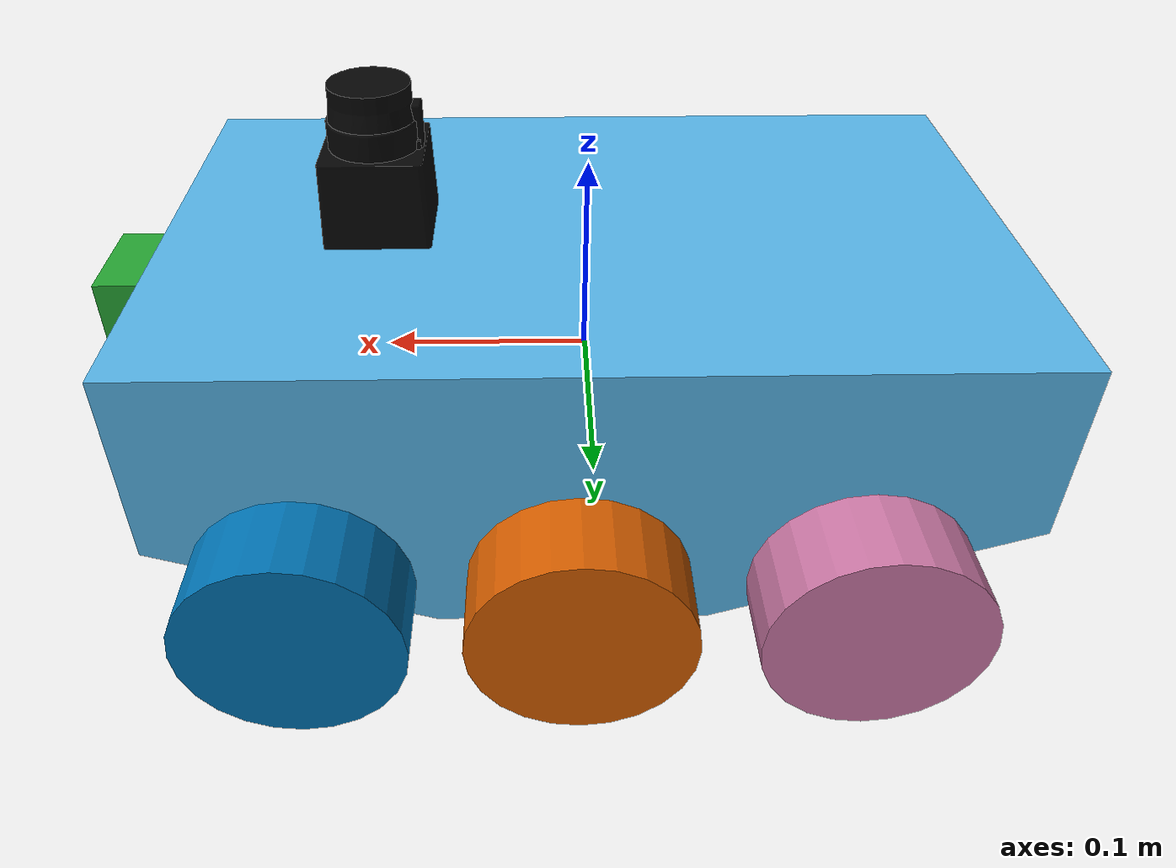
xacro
<?xml version="1.0"?>
<!-- created with Phobos 0.8 -->
  <robot name="tank_bot" xmlns:xacro="http://www.ros.org/wiki/xacro">

    <xacro:include filename="$(find tank_bot)/urdf/tank_bot.gazebo" />
    <link name="robot_footprint"></link>

    <joint name="robot_footprint_joint" type="fixed">
      <origin xyz="0 0 0" rpy="0 0 0" />
      <parent link="robot_footprint"/>
      <child link="body" />
    </joint>

    <link name="body">
      <inertial>
        <origin xyz="0 0 0" rpy="0 0 0"/>
        <mass value="25.0"/>
        <inertia ixx="0.1" ixy="0" ixz="0" iyy="0.1" iyz="0" izz="0.1"/>
      </inertial>
      <visual name="visual_body">
        <origin xyz="0 0 0" rpy="0 0 0"/>
        <geometry>
          <mesh filename="package://tank_bot/meshes/dae/body.dae" scale="0.2 0.125 0.06938"/>
        </geometry>
      </visual>
      <collision name="collision_body">
        <origin xyz="0 0 0" rpy="0 0 0"/>
        <geometry>
          <box size="0.4 0.25 0.13875"/>
        </geometry>
      </collision>
    </link>

    <link name="camera">
      <inertial>
        <origin xyz="0 0 0" rpy="0 0 0"/>
        <mass value="0.1"/>
        <inertia ixx="0" ixy="0" ixz="0" iyy="0" iyz="0" izz="0"/>
      </inertial>
      <visual name="tank_bot::visual_camera">
        <origin xyz="0 0 0" rpy="1.5707 0 0"/>
        <geometry>
          <box size="0.05 0.05 0.05"/>
        </geometry>
      </visual>
      <collision name="collision_camera">
        <origin xyz="0 0 0" rpy="0 0 0"/>
        <geometry>
          <box size="0.05 0.05 0.05"/>
        </geometry>
      </collision>
    </link>

    <link name="hokuyo">
      <inertial>
        <origin xyz="0 0 0" rpy="0 0 0"/>
        <mass value="0.1"/>
        <inertia ixx="0" ixy="0" ixz="0" iyy="0" iyz="0" izz="0"/>
      </inertial>
      <visual name="visual_hokuyo">
        <origin xyz="0 0 0" rpy="1.5707 0 0"/>
        <geometry>
          <mesh filename="package://tank_bot/meshes/dae/hokuyo.dae" scale="1.0 1.0 1.0"/>
        </geometry>
        <material name="black-material"/>
      </visual>
      <collision name="collision_hokuyo">
        <origin xyz="0 0 0" rpy="0 0 0"/>
        <geometry>
          <box size="0.05 0.0701 0.05"/>
        </geometry>
      </collision>
    </link>

    <link name="left_wheel1">
      <inertial>
        <origin xyz="0 0 0" rpy="0 0 0"/>
        <mass value="3.0"/>
        <inertia ixx="0.11111" ixy="0" ixz="0" iyy="0.11111" iyz="0" izz="0.11111"/>
      </inertial>
      <visual name="visual_left_wheel1">
        <origin xyz="0 0 0" rpy="0 3.14159 0"/>
        <geometry>
          <cylinder radius="0.05" length="0.04"/>
        </geometry>
      </visual>
      <collision name="collision_left_wheel1">
        <origin xyz="0 0 0" rpy="0 3.14159 0"/>
        <geometry>
          <cylinder radius="0.05" length="0.04"/>
        </geometry>
      </collision>
    </link>

    <link name="left_wheel2">
      <inertial>
        <origin xyz="0 0 0" rpy="0 0 0"/>
        <mass value="3.0"/>
        <inertia ixx="0.11111" ixy="0" ixz="0" iyy="0.11111" iyz="0" izz="0.11111"/>
      </inertial>
      <visual name="visual_left_wheel2">
        <origin xyz="0 0 0" rpy="0 3.14159 0"/>
        <geometry>
          <cylinder radius="0.05" length="0.04"/>
        </geometry>
      </visual>
      <collision name="collision_left_wheel2">
        <origin xyz="0 0 0" rpy="0 3.14159 0"/>
        <geometry>
          <cylinder radius="0.05" length="0.04"/>
        </geometry>
      </collision>
    </link>

    <link name="left_wheel3">
      <inertial>
        <origin xyz="0 0 0" rpy="0 0 0"/>
        <mass value="3.0"/>
        <inertia ixx="0.11111" ixy="0" ixz="0" iyy="0.11111" iyz="0" izz="0.11111"/>
      </inertial>
      <visual name="visual_left_wheel3">
        <origin xyz="0 0 0" rpy="0 3.14159 0"/>
        <geometry>
          <cylinder radius="0.05" length="0.04"/>
        </geometry>
      </visual>
      <collision name="collision_left_wheel3">
        <origin xyz="0 0 0" rpy="0 3.14159 0"/>
        <geometry>
          <cylinder radius="0.05" length="0.04"/>
        </geometry>
      </collision>
    </link>

    <link name="right_wheel1">
      <inertial>
        <origin xyz="0 0 0" rpy="0 0 0"/>
        <mass value="3.0"/>
        <inertia ixx="0.11111" ixy="0" ixz="0" iyy="0.11111" iyz="0" izz="0.11111"/>
      </inertial>
      <visual name="visual_right_wheel1">
        <origin xyz="0 0 0" rpy="0 0 0"/>
        <geometry>
          <cylinder radius="0.05" length="0.04"/>
        </geometry>
      </visual>
      <collision name="collision_right_wheel1">
        <origin xyz="0 0 0" rpy="0 0 0"/>
        <geometry>
          <cylinder radius="0.05" length="0.04"/>
        </geometry>
      </collision>
    </link>

    <link name="right_wheel2">
      <inertial>
        <origin xyz="0 0 0" rpy="0 0 0"/>
        <mass value="3.0"/>
        <inertia ixx="0.11111" ixy="0" ixz="0" iyy="0.11111" iyz="0" izz="0.11111"/>
      </inertial>
      <visual name="visual_right_wheel2">
        <origin xyz="0 0 0" rpy="0 0 0"/>
        <geometry>
          <cylinder radius="0.05" length="0.04"/>
        </geometry>
      </visual>
      <collision name="collision_right_wheel2">
        <origin xyz="0 0 0" rpy="0 0 0"/>
        <geometry>
          <cylinder radius="0.05" length="0.04"/>
        </geometry>
      </collision>
    </link>

    <link name="right_wheel3">
      <inertial>
        <origin xyz="0 0 0" rpy="0 0 0"/>
        <mass value="3.0"/>
        <inertia ixx="0.11111" ixy="0" ixz="0" iyy="0.11111" iyz="0" izz="0.11111"/>
      </inertial>
      <visual name="visual_right_wheel3">
        <origin xyz="0 0 0" rpy="0 0 0"/>
        <geometry>
          <cylinder radius="0.05" length="0.04"/>
        </geometry>
      </visual>
      <collision name="collision_right_wheel3">
        <origin xyz="0 0 0" rpy="0 0 0"/>
        <geometry>
          <cylinder radius="0.05" length="0.04"/>
        </geometry>
      </collision>
    </link>

    <joint name="camera_jnt" type="fixed">
      <origin xyz="0.20865 0 0.02619" rpy="0 0 0"/>
      <parent link="body"/>
      <child link="camera"/>
    </joint>

    <joint name="hokuyo_jnt" type="fixed">
      <origin xyz="0.097893 -0.000438 0.10459" rpy="0 0 0"/>
      <parent link="body"/>
      <child link="hokuyo"/>
    </joint>

    <joint name="left_wheel1_jnt" type="continuous">
      <origin xyz="0.1293 0.14937 -0.04" rpy="1.5708 0 -3.14159"/>
      <parent link="body"/>
      <child link="left_wheel1"/>
      <axis xyz="0 0 1.0"/>
      <limit effort="10000.0" velocity="1000.0"/>
    </joint>

    <joint name="left_wheel2_jnt" type="continuous">
      <origin xyz="0.00699 0.14938 -0.04" rpy="1.5708 0 -3.14159"/>
      <parent link="body"/>
      <child link="left_wheel2"/>
      <axis xyz="0 0 1.0"/>
      <limit effort="10000.0" velocity="1000.0"/>
    </joint>

    <joint name="left_wheel3_jnt" type="continuous">
      <origin xyz="-0.11784 0.14938 -0.04" rpy="1.5708 0 -3.14159"/>
      <parent link="body"/>
      <child link="left_wheel3"/>
      <axis xyz="0 0 1.0"/>
      <limit effort="10000.0" velocity="1000.0"/>
    </joint>

    <joint name="right_wheel1_jnt" type="continuous">
      <origin xyz="0.12929 -0.14931 -0.04" rpy="1.5708 0 0"/>
      <parent link="body"/>
      <child link="right_wheel1"/>
      <axis xyz="0 0 1.0"/>
      <limit effort="10000.0" velocity="1000.0"/>
    </joint>

    <joint name="right_wheel2_jnt" type="continuous">
      <origin xyz="0.00699 -0.14931 -0.04" rpy="1.5708 0 0"/>
      <parent link="body"/>
      <child link="right_wheel2"/>
      <axis xyz="0 0 1.0"/>
      <limit effort="10000.0" velocity="1000.0"/>
    </joint>

    <joint name="right_wheel3_jnt" type="continuous">
      <origin xyz="-0.1178 -0.14931 -0.04" rpy="1.5708 0 0"/>
      <parent link="body"/>
      <child link="right_wheel3"/>
      <axis xyz="0 0 1.0"/>
      <limit effort="10000.0" velocity="1000.0"/>
    </joint>

    <material name="black-material">
      <color rgba="0.02031 0.02031 0.02031 1.0"/>
    </material>

  </robot>
